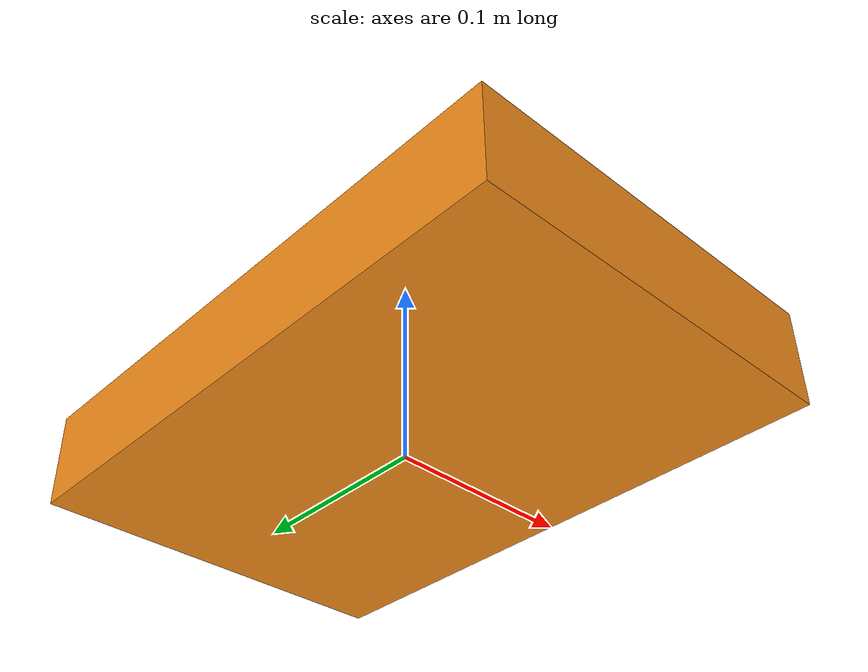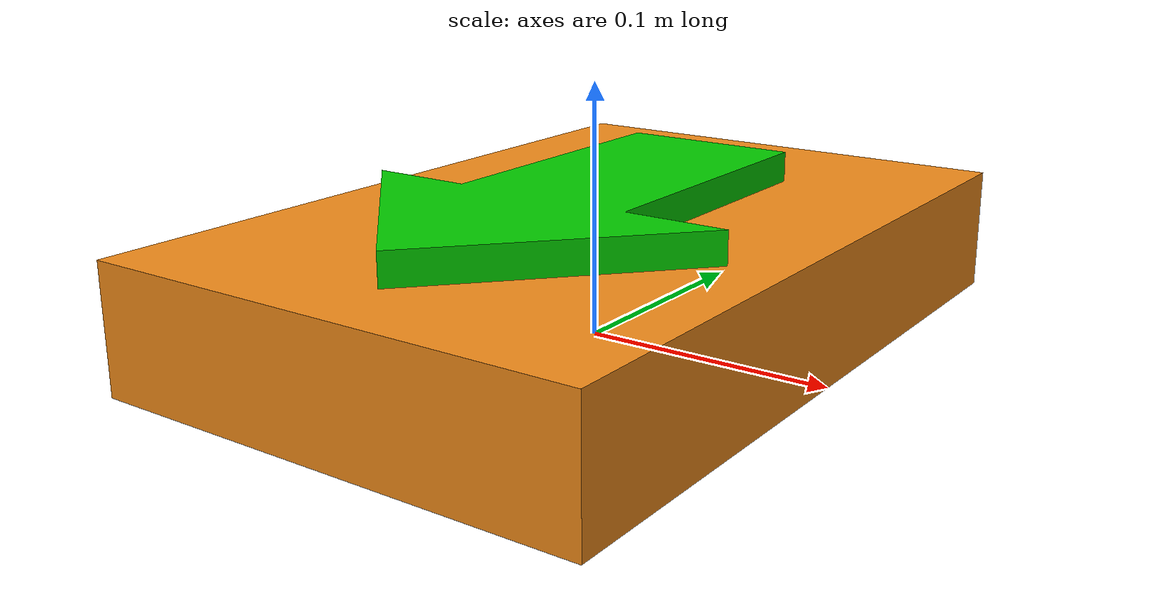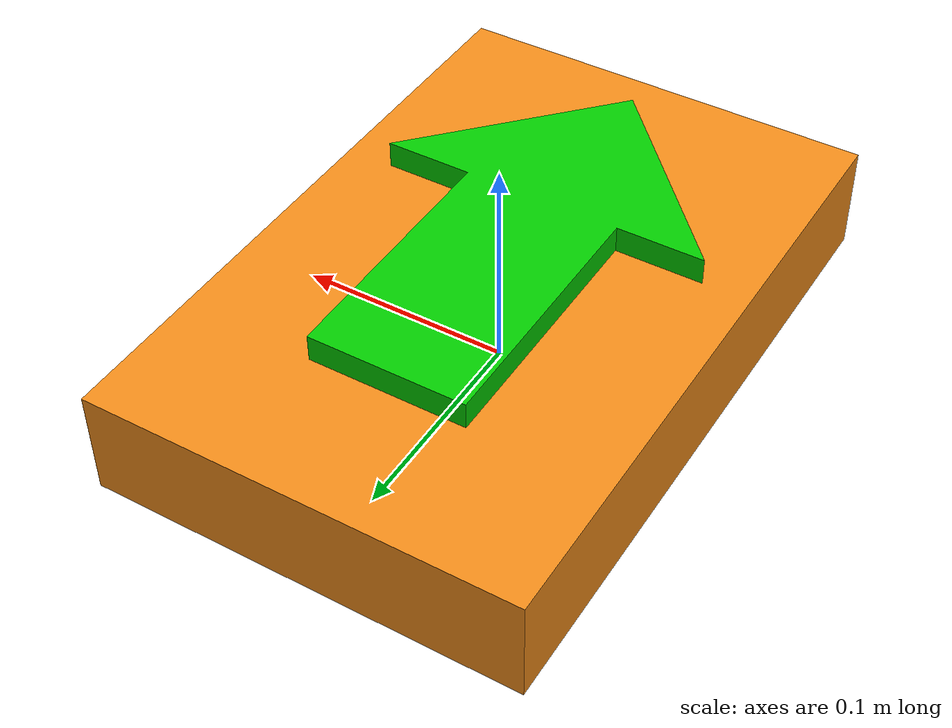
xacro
<?xml version="1.0"?>
<robot name="Jet" xmlns:xacro="http://www.ros.org/wiki/xacro">

  <xacro:include filename="$(find jet_description)/urdf/multi_robot.gazebo"/>
  <xacro:include filename="$(find jet_description)/urdf/material_color.xacro"/>

  <!--........................Dummy Link.............................-->
  <link name="Main_Frame">
   </link>
   <joint name="Main_Frame_Joint" type="fixed">
     <parent link="Main_Frame"/>
     <child link="chassis"/>
     <origin xyz="0 0 0" rpy="0 0 0"/>
   </joint>

  <!--.........................Chassis...............................-->
  <link name='chassis'>
    <collision name='collision'>
      <origin xyz="0 0 0.025" rpy="0 0 1.570796327"/>
      <geometry>
        <box size=".3 .2 .05"/>
      </geometry>
    </collision>
    <visual name='chassis_visual'>
      <origin xyz="0 0 0.025" rpy="0 0 1.570796327"/>
      <geometry>
        <box size=".3 .2 .05"/>
      </geometry>
      <material name="orange"/>
    </visual>
    <inertial>
      <mass value="2.5"/>
      <origin xyz="0 0 0" rpy=" 0 0 0"/>
      <inertia
          ixx="27.08e-3" ixy="0" ixz="0"
          iyy="8.85e-3" iyz="0"
          izz="19.27e-3"/>
    </inertial>
  </link>

  <!--................................Arrow...................................-->
  <link name="arrow">
    <visual name="arrow_visual">
      <origin xyz="0 0 0" rpy="0 0 1.570796327"/>
      <geometry>
        <mesh filename="package://jet_description/meshes/Arrow.dae"/>
      </geometry>
    </visual>
    <inertial>
      <origin xyz="0 0 0" rpy="0 0 0"/>
      <mass value="0.0"/>
      <inertia
        ixx="0" ixy="0.0" ixz="0.0"
        iyy="0" iyz="0.0"
        izz="0"/>
    </inertial>
  </link>

  <joint name="arrow_joint" type="fixed">
    <axis xyz="0 0 0"/>
    <origin xyz="0 -0.035 0.05" rpy="0 0 1.570796327"/>
    <parent link="chassis"/>
    <child link="arrow"/>
  </joint>

  <!--..............................Left Wheel..................................-->
  <link name="left_wheel">
    <collision name="collision">
      <origin xyz="0 0 0" rpy="0 1.570796327 0"/>
      <geometry>
        <cylinder radius="0.075" length="0.03"/>
      </geometry>
    </collision>
    <inertial>
      <origin xyz="0 0 0" rpy="0 0 0"/>
      <mass value="0.75"/>
      <inertia
        ixx="3.51e-4" ixy="0.0" ixz="0.0"
        iyy="1.11e-3" iyz="0.0"
        izz="1.11e-3"/>
    </inertial>
  </link>

  <joint type="continuous" name="left_wheel_joint">
    <origin xyz="0.15 -0.1 0.02" rpy="0 0 0"/>
    <child link="left_wheel"/>
    <parent link="chassis"/>
    <axis xyz="1 0 0" rpy="0 0 0"/>
  </joint>

  <!--..............................Right Wheel..................................-->
  <link name="right_wheel">
    <collision name="collision">
      <origin xyz="0 0 0" rpy="0 1.570796327 0"/>
      <geometry>
        <cylinder radius="0.075" length="0.03"/>
      </geometry>
    </collision>
    <inertial>
      <origin xyz="0 0 0" rpy="0 0 0"/>
      <mass value="0.75"/>
      <inertia
        ixx="3.51e-4" ixy="0.0" ixz="0.0"
        iyy="1.11e-3" iyz="0.0"
        izz="1.11e-3"/>
    </inertial>
  </link>

  <joint type="continuous" name="right_wheel_joint">
    <origin xyz="-0.15 -0.1 0.02" rpy="0 0 0"/>
    <child link="right_wheel"/>
    <parent link="chassis"/>
    <axis xyz="1 0 0" rpy="0 0 0"/>
  </joint>

  <!--..............................Caster Link...............................-->
  <link name="caster_link">
    <inertial>
      <origin xyz="0 0 0" rpy="0 0 0"/>
      <mass value="0.5"/>
      <inertia
        ixx="3.80e-4" ixy="0.0" ixz="0.0"
        iyy="4.08e-4" iyz="0.0"
        izz="3.80e-4"/>
    </inertial>
  </link>

  <joint type="continuous" name="caster_joint">
    <origin xyz="0 0.1 0.005" rpy="0 0 0"/>
    <child link="caster_link"/>
    <parent link="chassis"/>
    <axis xyz="0 0 1" rpy="0 0 0"/>
  </joint>

  <!--..............................Caster Wheel..................................-->
  <link name="caster_wheel">
    <collision name="collision">
      <origin xyz="0 0 0" rpy="0 1.570796327 0"/>
      <geometry>
        <cylinder radius="0.0225" length="0.015"/>
      </geometry>
    </collision>
    <inertial>
      <origin xyz="0 0 0" rpy="0 0 0"/>
      <mass value="0.25"/>
      <inertia
        ixx="1.05e-5" ixy="0.0" ixz="0.0"
        iyy="3.63e-5" iyz="0.0"
        izz="3.63e-5"/>
    </inertial>
  </link>

  <joint type="continuous" name="caster_turn">
    <origin xyz="0 0.02 -0.0375" rpy="0 0 0"/>
    <child link="caster_wheel"/>
    <parent link="caster_link"/>
    <axis xyz="1 0 0" rpy="0 0 0"/>
  </joint>

  <!--................................Camera..................................-->
  <link name="camera">
    <inertial>
      <origin xyz="0 0 0" rpy="0 0 0"/>
      <mass value="0.1" />
      <inertia ixx="0" ixy="0" ixz="0" iyy="0" iyz="0" izz="0" />
    </inertial>
  </link>

  <joint name="camera_joint" type="fixed">
    <axis xyz="0 0 0" rpy="0 0 0" />
    <origin xyz="0 -0.145 0.025" rpy="0 0 -1.570796327"/>
    <parent link="chassis"/>
    <child link="camera"/>
  </joint>

  <!--............................Liadar................................-->
  <link name="hokuyo">
    <inertial>
      <mass value="0.25" />
      <origin xyz="0 0 0" rpy="0 0 0"/>
      <inertia ixx="0" ixy="0" ixz="0" iyy="0" iyz="0" izz="0" />
    </inertial>
  </link>

  <joint name="hokuyo_joint" type="fixed">
    <axis xyz="0 0 0" />
    <origin xyz="0 -0.12 0.1" rpy="0 0 -1.570796327"/>
    <parent link="chassis"/>
    <child link="hokuyo"/>
  </joint>

  <!--............................IMU................................-->
  <link name="IMU_link">

    <inertial>
      <mass value="1e-6"/>
      <origin rpy="0 0 0" xyz="0 0 0"/>
      <inertia ixx="0" ixy="0" ixz="0" iyy="0" iyz="0" izz="0"/>
    </inertial>
  </link>

  <joint name="imu_joint" type="fixed">
    <axis xyz="0 0 0"/>
    <origin xyz="0 0 0.0525" rpy="0 0 0"/>
    <parent link="chassis"/>
    <child link="IMU_link"/>
  </joint>

</robot>
